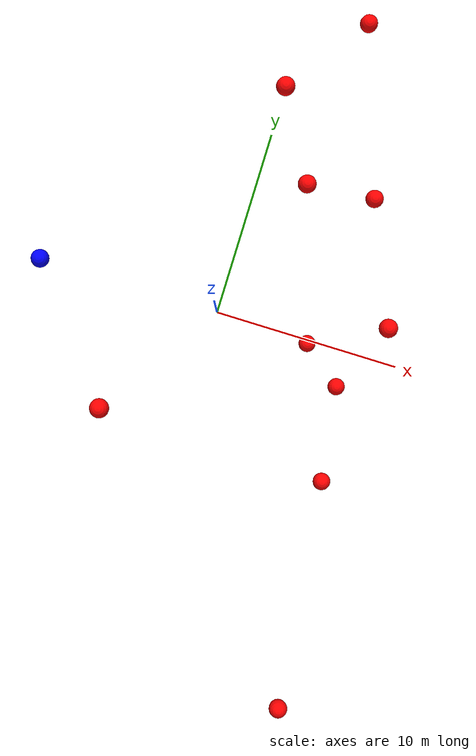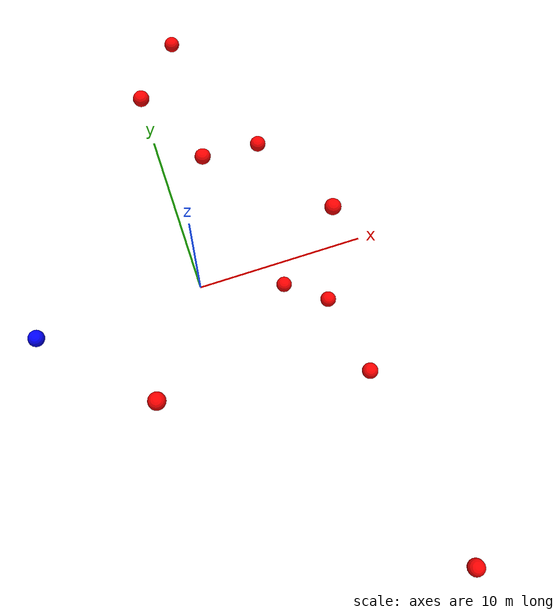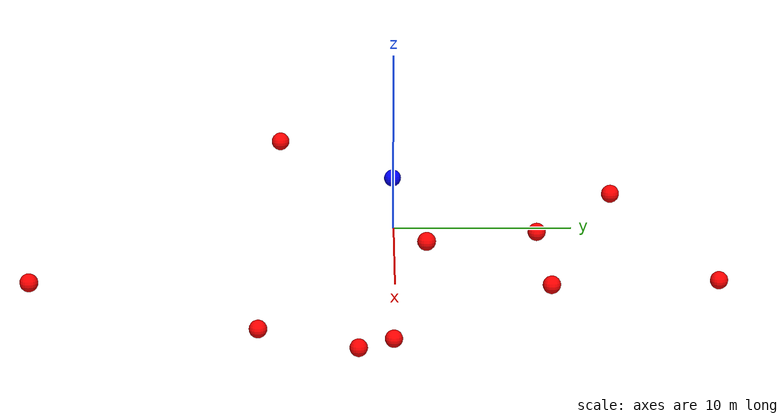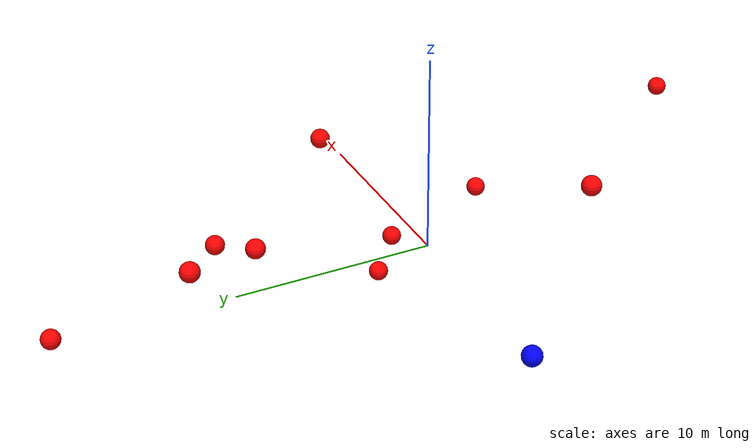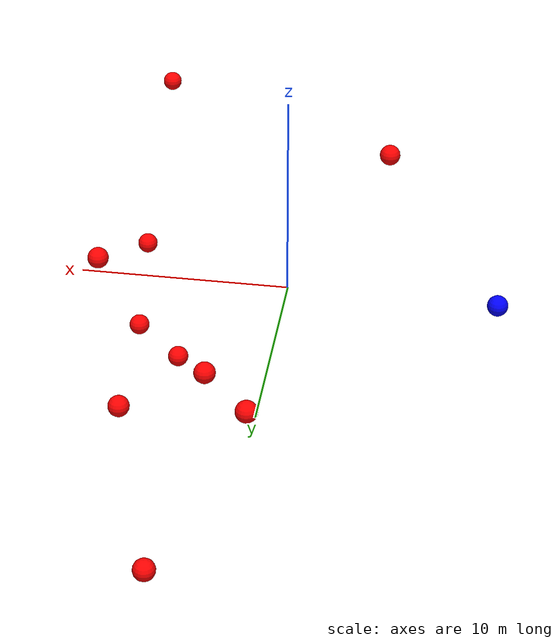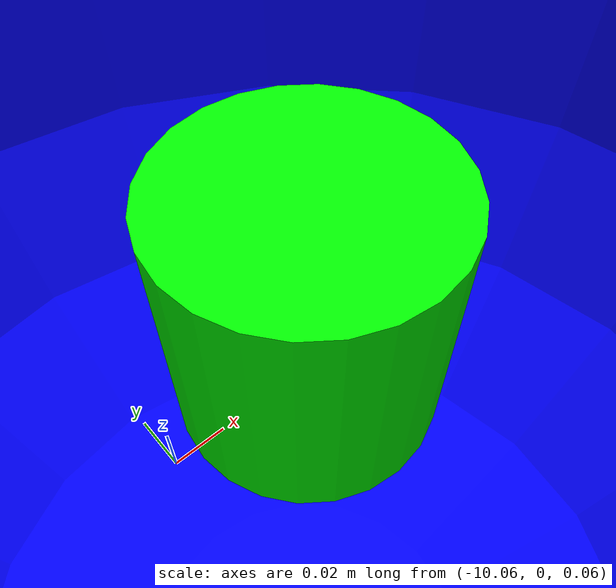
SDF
<?xml version="1.0" ?>
<sdf version="1.8">
    <world name="3d_world">
        <physics name="1ms" type="ode">
            <max_step_size>0.001</max_step_size>
            <real_time_factor>1.0</real_time_factor>
            <real_time_update_rate>1000.0</real_time_update_rate>
        </physics>
        <gravity>0 0 0</gravity>

        <plugin
            filename="gz-sim-physics-system"
            name="gz::sim::v8::systems::Physics">
        </plugin>
        <plugin
            filename="libignition-gazebo-user-commands-system.so"
            name="ignition::gazebo::systems::UserCommands">
        </plugin>
        <plugin
            filename="gz-sim-scene-broadcaster-system"
            name="gz::sim::systems::SceneBroadcaster">
        </plugin>
        <plugin
            filename="gz-sim-sensors-system"
            name="gz::sim::systems::Sensors">
            <render_engine>ogre2</render_engine>
        </plugin>

        <light type="directional" name="sun">
            <cast_shadows>true</cast_shadows>
            <pose>0 0 10 0 0 0</pose>
            <diffuse>0.8 0.8 0.8 1</diffuse>
            <specular>0.2 0.2 0.2 1</specular>
            <attenuation>
                <range>1000</range>
                <constant>0.9</constant>
                <linear>0.01</linear>
                <quadratic>0.001</quadratic>
            </attenuation>
            <direction>-0.5 0.1 -0.9</direction>
        </light>

        <!-- AGENTE -->
        <model name='agente' canonical_link='chassis'>
            <pose relative_to='world'>-10.0 0 0.0 0 0 0</pose>
            <link name='chassis'>
                <pose relative_to='__model__'>0.0 0 0.0 0 0 0</pose>
                <inertial>
                    <mass>1.14395</mass>
                    <inertia>
                        <ixx>0.095329</ixx>
                        <ixy>0</ixy>
                        <ixz>0</ixz>
                        <iyy>0.381317</iyy>
                        <iyz>0</iyz>
                        <izz>0.476646</izz>
                    </inertia>
                </inertial>
                <visual name='visual'>
                    <geometry>
                        <sphere>
                            <radius>0.5</radius>
                        </sphere>
                    </geometry>
                    <material>
                        <ambient>0.0 0.0 1.0 1</ambient>
                        <diffuse>0.0 0.0 1.0 1</diffuse>
                        <specular>0.0 0.0 1.0 1</specular>
                    </material>
                </visual>
                <collision name='collision'>
                    <geometry>
                        <sphere>
                            <radius>0.5</radius>
                        </sphere>
                    </geometry>
                </collision>
                <enable_gravity>false</enable_gravity>
            </link>

            <link name='lidar_link'>
                <pose relative_to='chassis'>0.0 0 0.1 0 0 0</pose>
                <inertial>
                    <mass>0.1</mass>
                    <inertia>
                        <ixx>0.000166667</ixx>
                        <iyy>0.000166667</iyy>
                        <izz>0.000166667</izz>
                    </inertia>
                </inertial>
                <collision name='collision'>
                    <geometry>
                        <cylinder>
                            <radius>0.05</radius>
                            <length>0.1</length>
                        </cylinder>
                    </geometry>
                </collision>
                <visual name='visual'>
                    <geometry>
                        <cylinder>
                            <radius>0.05</radius>
                            <length>0.1</length>
                        </cylinder>
                    </geometry>
                    <material>
                        <ambient>0.0 1.0 0.0 1</ambient>
                        <diffuse>0.0 1.0 0.0 1</diffuse>
                        <specular>0.0 1.0 0.0 1</specular>
                    </material>
                </visual>
                <sensor name="lidar" type="gpu_lidar">
                    <topic>scan</topic>
                    <update_rate>10</update_rate>
                    <lidar>
                        <scan>
                            <horizontal>
                                <samples>5000</samples>
                                <resolution>1</resolution>
                                <min_angle>-3.14159</min_angle>
                                <max_angle>3.14159</max_angle>
                            </horizontal>
                        </scan>
                        <range>
                            <min>0.1</min>
                            <max>10.0</max>
                            <resolution>0.01</resolution>
                        </range>
                    </lidar>
                    <visualize>true</visualize>
                    <always_on>true</always_on>
                    <update_rate>10</update_rate>
                    <pose_frame>lidar</pose_frame>
                </sensor>
                <enable_gravity>false</enable_gravity>
            </link>

            <joint name="lidar_joint" type="fixed">
                <parent>chassis</parent>
                <child>lidar_link</child>
            </joint>

            <plugin
                filename="ignition-gazebo-joint-state-publisher-system"
                name="ignition::gazebo::systems::JointStatePublisher">
            </plugin>
            <plugin
                filename="ignition-gazebo-odometry-publisher-system"
                name="ignition::gazebo::systems::OdometryPublisher">
                <dimensions>3</dimensions>
            </plugin>
            <plugin
                filename="ignition-gazebo-velocity-control-system"
                name="ignition::gazebo::systems::VelocityControl">
                <initial_linear>0.0 0 0</initial_linear>
                <initial_angular>0 0 0.0</initial_angular>
            </plugin>
            <plugin
                filename="libignition-gazebo-pose-publisher-system.so"
                name="ignition::gazebo::systems::PosePublisher">
                <topic>/agente/pose</topic>
                <frame_id>agente</frame_id>
                <update_rate>30</update_rate>
            </plugin>
        </model>

        <!-- OBSTACLE 1 -->
        <model name='obstacle_1' canonical_link='obstacle'>
            <static>false</static>
            <pose relative_to='world'>8.42 -7.36 -3.06 0 0 0</pose>
            <link name='obstacle'>
                <pose relative_to='__model__'>0.0 0 0.0 0 0 0</pose>
                <visual name='visual'>
                    <geometry>
                        <sphere>
                            <radius>0.50</radius>
                        </sphere>
                    </geometry>
                    <material>
                        <ambient>1.0 0.0 0.0 1</ambient>
                        <diffuse>1.0 0.0 0.0 1</diffuse>
                        <specular>1.0 0.0 0.0 1</specular>
                    </material>
                </visual>
                <collision name='collision'>
                    <geometry>
                        <sphere>
                            <radius>0.50</radius>
                        </sphere>
                    </geometry>
                </collision>
                <enable_gravity>false</enable_gravity>
            </link>

            <plugin
                filename="ignition-gazebo-velocity-control-system"
                name="ignition::gazebo::systems::VelocityControl">
                <initial_linear>-1.44 1.29 0.53</initial_linear>
                <initial_angular>0 0 0</initial_angular>
            </plugin>

            <plugin
                filename="ignition-gazebo-odometry-publisher-system"
                name="ignition::gazebo::systems::OdometryPublisher">
                <dimensions>3</dimensions>
            </plugin>
        </model>

        <!-- OBSTACLE 2 -->
        <model name='obstacle_2' canonical_link='obstacle'>
            <static>false</static>
            <pose relative_to='world'>2.59 7.92 0.59 0 0 0</pose>
            <link name='obstacle'>
                <pose relative_to='__model__'>0.0 0 0.0 0 0 0</pose>
                <visual name='visual'>
                    <geometry>
                        <sphere>
                            <radius>0.50</radius>
                        </sphere>
                    </geometry>
                    <material>
                        <ambient>1.0 0.0 0.0 1</ambient>
                        <diffuse>1.0 0.0 0.0 1</diffuse>
                        <specular>1.0 0.0 0.0 1</specular>
                    </material>
                </visual>
                <collision name='collision'>
                    <geometry>
                        <sphere>
                            <radius>0.50</radius>
                        </sphere>
                    </geometry>
                </collision>
                <enable_gravity>false</enable_gravity>
            </link>

            <plugin
                filename="ignition-gazebo-velocity-control-system"
                name="ignition::gazebo::systems::VelocityControl">
                <initial_linear>-1.11 -1.66 -0.12</initial_linear>
                <initial_angular>0 0 0</initial_angular>
            </plugin>

            <plugin
                filename="ignition-gazebo-odometry-publisher-system"
                name="ignition::gazebo::systems::OdometryPublisher">
                <dimensions>3</dimensions>
            </plugin>
        </model>

        <!-- OBSTACLE 3 -->
        <model name='obstacle_3' canonical_link='obstacle'>
            <static>false</static>
            <pose relative_to='world'>6.43 8.58 -1.22 0 0 0</pose>
            <link name='obstacle'>
                <pose relative_to='__model__'>0.0 0 0.0 0 0 0</pose>
                <visual name='visual'>
                    <geometry>
                        <sphere>
                            <radius>0.50</radius>
                        </sphere>
                    </geometry>
                    <material>
                        <ambient>1.0 0.0 0.0 1</ambient>
                        <diffuse>1.0 0.0 0.0 1</diffuse>
                        <specular>1.0 0.0 0.0 1</specular>
                    </material>
                </visual>
                <collision name='collision'>
                    <geometry>
                        <sphere>
                            <radius>0.50</radius>
                        </sphere>
                    </geometry>
                </collision>
                <enable_gravity>false</enable_gravity>
            </link>

            <plugin
                filename="ignition-gazebo-velocity-control-system"
                name="ignition::gazebo::systems::VelocityControl">
                <initial_linear>-0.22 -1.42 0.20</initial_linear>
                <initial_angular>0 0 0</initial_angular>
            </plugin>

            <plugin
                filename="ignition-gazebo-odometry-publisher-system"
                name="ignition::gazebo::systems::OdometryPublisher">
                <dimensions>3</dimensions>
            </plugin>
        </model>

        <!-- OBSTACLE 4 -->
        <model name='obstacle_4' canonical_link='obstacle'>
            <static>false</static>
            <pose relative_to='world'>5.45 -0.00 -4.67 0 0 0</pose>
            <link name='obstacle'>
                <pose relative_to='__model__'>0.0 0 0.0 0 0 0</pose>
                <visual name='visual'>
                    <geometry>
                        <sphere>
                            <radius>0.50</radius>
                        </sphere>
                    </geometry>
                    <material>
                        <ambient>1.0 0.0 0.0 1</ambient>
                        <diffuse>1.0 0.0 0.0 1</diffuse>
                        <specular>1.0 0.0 0.0 1</specular>
                    </material>
                </visual>
                <collision name='collision'>
                    <geometry>
                        <sphere>
                            <radius>0.50</radius>
                        </sphere>
                    </geometry>
                </collision>
                <enable_gravity>false</enable_gravity>
            </link>

            <plugin
                filename="ignition-gazebo-velocity-control-system"
                name="ignition::gazebo::systems::VelocityControl">
                <initial_linear>-0.37 0.00 0.87</initial_linear>
                <initial_angular>0 0 0</initial_angular>
            </plugin>

            <plugin
                filename="ignition-gazebo-odometry-publisher-system"
                name="ignition::gazebo::systems::OdometryPublisher">
                <dimensions>3</dimensions>
            </plugin>
        </model>

        <!-- OBSTACLE 5 -->
        <model name='obstacle_5' canonical_link='obstacle'>
            <static>false</static>
            <pose relative_to='world'>7.79 -1.93 -4.36 0 0 0</pose>
            <link name='obstacle'>
                <pose relative_to='__model__'>0.0 0 0.0 0 0 0</pose>
                <visual name='visual'>
                    <geometry>
                        <sphere>
                            <radius>0.50</radius>
                        </sphere>
                    </geometry>
                    <material>
                        <ambient>1.0 0.0 0.0 1</ambient>
                        <diffuse>1.0 0.0 0.0 1</diffuse>
                        <specular>1.0 0.0 0.0 1</specular>
                    </material>
                </visual>
                <collision name='collision'>
                    <geometry>
                        <sphere>
                            <radius>0.50</radius>
                        </sphere>
                    </geometry>
                </collision>
                <enable_gravity>false</enable_gravity>
            </link>

            <plugin
                filename="ignition-gazebo-velocity-control-system"
                name="ignition::gazebo::systems::VelocityControl">
                <initial_linear>-1.69 0.44 0.98</initial_linear>
                <initial_angular>0 0 0</initial_angular>
            </plugin>

            <plugin
                filename="ignition-gazebo-odometry-publisher-system"
                name="ignition::gazebo::systems::OdometryPublisher">
                <dimensions>3</dimensions>
            </plugin>
        </model>

        <!-- OBSTACLE 6 -->
        <model name='obstacle_6' canonical_link='obstacle'>
            <static>false</static>
            <pose relative_to='world'>-4.14 -6.45 3.92 0 0 0</pose>
            <link name='obstacle'>
                <pose relative_to='__model__'>0.0 0 0.0 0 0 0</pose>
                <visual name='visual'>
                    <geometry>
                        <sphere>
                            <radius>0.50</radius>
                        </sphere>
                    </geometry>
                    <material>
                        <ambient>1.0 0.0 0.0 1</ambient>
                        <diffuse>1.0 0.0 0.0 1</diffuse>
                        <specular>1.0 0.0 0.0 1</specular>
                    </material>
                </visual>
                <collision name='collision'>
                    <geometry>
                        <sphere>
                            <radius>0.50</radius>
                        </sphere>
                    </geometry>
                </collision>
                <enable_gravity>false</enable_gravity>
            </link>

            <plugin
                filename="ignition-gazebo-velocity-control-system"
                name="ignition::gazebo::systems::VelocityControl">
                <initial_linear>0.82 1.56 -0.95</initial_linear>
                <initial_angular>0 0 0</initial_angular>
            </plugin>

            <plugin
                filename="ignition-gazebo-odometry-publisher-system"
                name="ignition::gazebo::systems::OdometryPublisher">
                <dimensions>3</dimensions>
            </plugin>
        </model>

        <!-- OBSTACLE 7 -->
        <model name='obstacle_7' canonical_link='obstacle'>
            <static>false</static>
            <pose relative_to='world'>0.01 12.15 2.02 0 0 0</pose>
            <link name='obstacle'>
                <pose relative_to='__model__'>0.0 0 0.0 0 0 0</pose>
                <visual name='visual'>
                    <geometry>
                        <sphere>
                            <radius>0.50</radius>
                        </sphere>
                    </geometry>
                    <material>
                        <ambient>1.0 0.0 0.0 1</ambient>
                        <diffuse>1.0 0.0 0.0 1</diffuse>
                        <specular>1.0 0.0 0.0 1</specular>
                    </material>
                </visual>
                <collision name='collision'>
                    <geometry>
                        <sphere>
                            <radius>0.50</radius>
                        </sphere>
                    </geometry>
                </collision>
                <enable_gravity>false</enable_gravity>
            </link>

            <plugin
                filename="ignition-gazebo-velocity-control-system"
                name="ignition::gazebo::systems::VelocityControl">
                <initial_linear>0.04 -1.97 -0.33</initial_linear>
                <initial_angular>0 0 0</initial_angular>
            </plugin>

            <plugin
                filename="ignition-gazebo-odometry-publisher-system"
                name="ignition::gazebo::systems::OdometryPublisher">
                <dimensions>3</dimensions>
            </plugin>
        </model>

        <!-- OBSTACLE 8 -->
        <model name='obstacle_8' canonical_link='obstacle'>
            <static>false</static>
            <pose relative_to='world'>3.34 18.04 -1.99 0 0 0</pose>
            <link name='obstacle'>
                <pose relative_to='__model__'>0.0 0 0.0 0 0 0</pose>
                <visual name='visual'>
                    <geometry>
                        <sphere>
                            <radius>0.50</radius>
                        </sphere>
                    </geometry>
                    <material>
                        <ambient>1.0 0.0 0.0 1</ambient>
                        <diffuse>1.0 0.0 0.0 1</diffuse>
                        <specular>1.0 0.0 0.0 1</specular>
                    </material>
                </visual>
                <collision name='collision'>
                    <geometry>
                        <sphere>
                            <radius>0.50</radius>
                        </sphere>
                    </geometry>
                </collision>
                <enable_gravity>false</enable_gravity>
            </link>

            <plugin
                filename="ignition-gazebo-velocity-control-system"
                name="ignition::gazebo::systems::VelocityControl">
                <initial_linear>-0.24 -1.97 0.22</initial_linear>
                <initial_angular>0 0 0</initial_angular>
            </plugin>

            <plugin
                filename="ignition-gazebo-odometry-publisher-system"
                name="ignition::gazebo::systems::OdometryPublisher">
                <dimensions>3</dimensions>
            </plugin>
        </model>

        <!-- OBSTACLE 9 -->
        <model name='obstacle_9' canonical_link='obstacle'>
            <static>false</static>
            <pose relative_to='world'>8.76 1.71 2.00 0 0 0</pose>
            <link name='obstacle'>
                <pose relative_to='__model__'>0.0 0 0.0 0 0 0</pose>
                <visual name='visual'>
                    <geometry>
                        <sphere>
                            <radius>0.50</radius>
                        </sphere>
                    </geometry>
                    <material>
                        <ambient>1.0 0.0 0.0 1</ambient>
                        <diffuse>1.0 0.0 0.0 1</diffuse>
                        <specular>1.0 0.0 0.0 1</specular>
                    </material>
                </visual>
                <collision name='collision'>
                    <geometry>
                        <sphere>
                            <radius>0.50</radius>
                        </sphere>
                    </geometry>
                </collision>
                <enable_gravity>false</enable_gravity>
            </link>

            <plugin
                filename="ignition-gazebo-velocity-control-system"
                name="ignition::gazebo::systems::VelocityControl">
                <initial_linear>-0.71 -0.29 -0.34</initial_linear>
                <initial_angular>0 0 0</initial_angular>
            </plugin>

            <plugin
                filename="ignition-gazebo-odometry-publisher-system"
                name="ignition::gazebo::systems::OdometryPublisher">
                <dimensions>3</dimensions>
            </plugin>
        </model>

        <!-- OBSTACLE 10 -->
        <model name='obstacle_10' canonical_link='obstacle'>
            <static>false</static>
            <pose relative_to='world'>9.37 -19.51 -0.11 0 0 0</pose>
            <link name='obstacle'>
                <pose relative_to='__model__'>0.0 0 0.0 0 0 0</pose>
                <visual name='visual'>
                    <geometry>
                        <sphere>
                            <radius>0.50</radius>
                        </sphere>
                    </geometry>
                    <material>
                        <ambient>1.0 0.0 0.0 1</ambient>
                        <diffuse>1.0 0.0 0.0 1</diffuse>
                        <specular>1.0 0.0 0.0 1</specular>
                    </material>
                </visual>
                <collision name='collision'>
                    <geometry>
                        <sphere>
                            <radius>0.50</radius>
                        </sphere>
                    </geometry>
                </collision>
                <enable_gravity>false</enable_gravity>
            </link>

            <plugin
                filename="ignition-gazebo-velocity-control-system"
                name="ignition::gazebo::systems::VelocityControl">
                <initial_linear>-0.60 1.91 0.01</initial_linear>
                <initial_angular>0 0 0</initial_angular>
            </plugin>

            <plugin
                filename="ignition-gazebo-odometry-publisher-system"
                name="ignition::gazebo::systems::OdometryPublisher">
                <dimensions>3</dimensions>
            </plugin>
        </model>

    </world>
</sdf>
